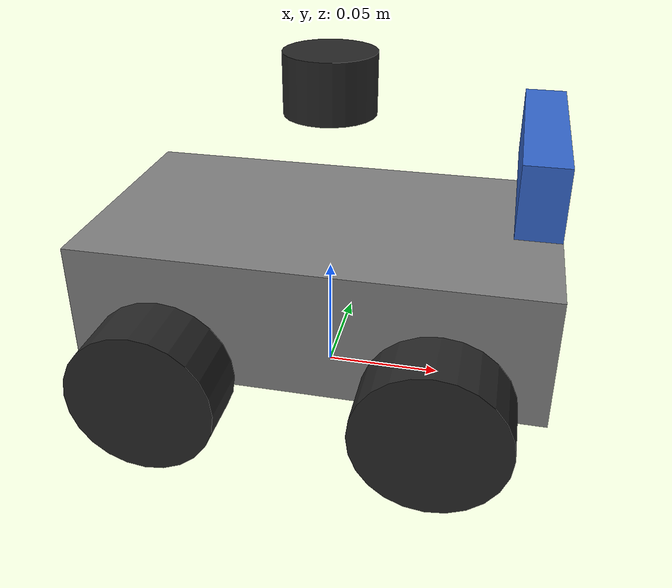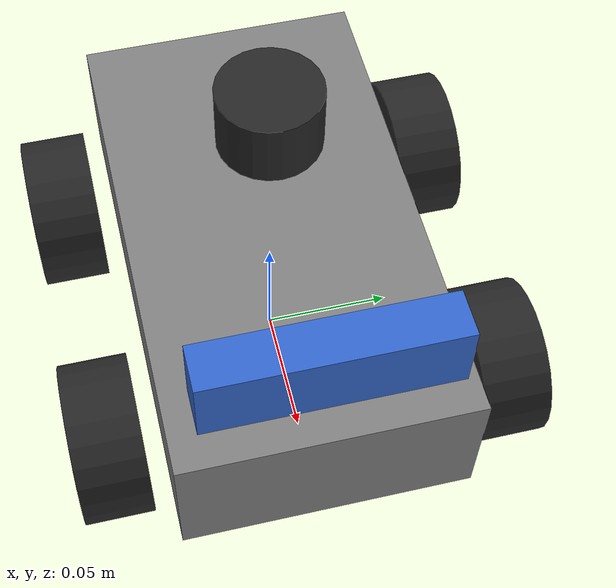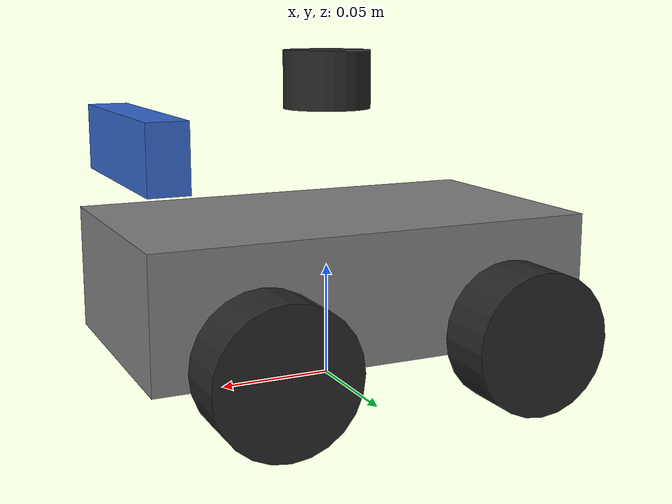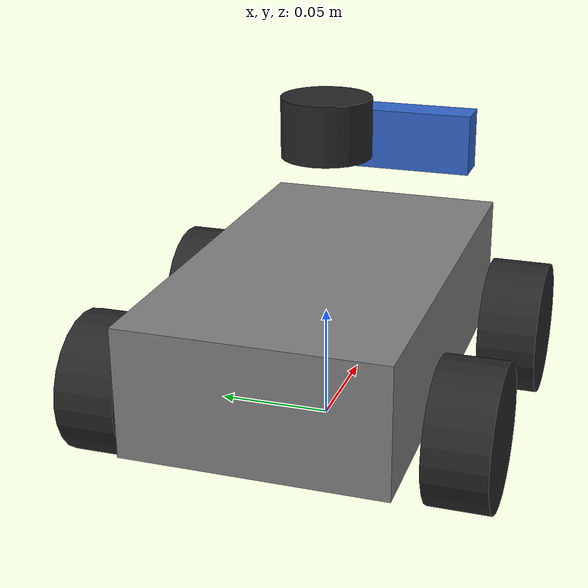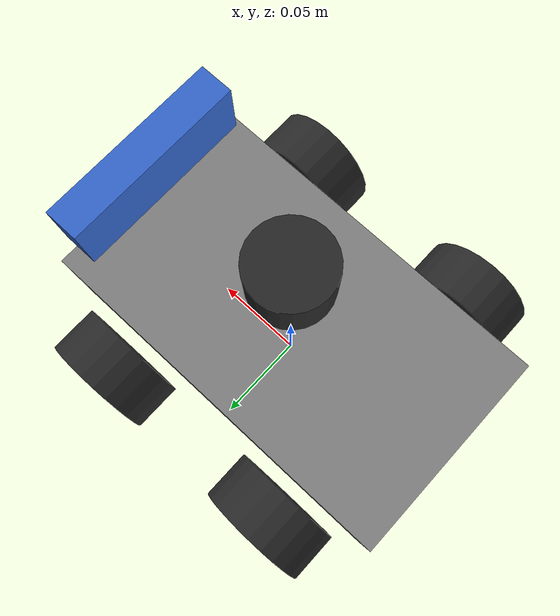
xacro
<?xml version="1.0"?>
<!--
  Wave Rover (Waveshare) 194 x 168 x 100 mm.
  Medidas marcadas [calibrar] son aproximadas: ajustar con regla sobre el robot.
  Convencion REP-103: x adelante, y izquierda, z arriba.
-->
<robot xmlns:xacro="http://www.ros.org/wiki/xacro" name="waver">

  <!-- Chasis -->
  <xacro:property name="body_length" value="0.194"/>
  <xacro:property name="body_width"  value="0.110"/>   <!-- sin ruedas [calibrar] -->
  <xacro:property name="body_height" value="0.055"/>   <!-- [calibrar] -->
  <xacro:property name="ground_clearance" value="0.020"/> <!-- [calibrar] -->

  <!-- Ruedas -->
  <xacro:property name="wheel_radius" value="0.030"/>  <!-- [calibrar] -->
  <xacro:property name="wheel_width"  value="0.026"/>  <!-- [calibrar] -->
  <xacro:property name="wheel_separation" value="0.125"/> <!-- entre centros [calibrar] -->
  <xacro:property name="wheel_base" value="0.110"/>    <!-- entre ejes [calibrar] -->

  <!-- Sensores (alturas sobre base_link) [calibrar todos] -->
  <xacro:property name="lidar_x" value="0.0"/>
  <xacro:property name="lidar_z" value="0.085"/>
  <xacro:property name="oak_x" value="0.085"/>
  <xacro:property name="oak_z" value="0.060"/>

  <material name="black"><color rgba="0.15 0.15 0.15 1"/></material>
  <material name="grey"><color rgba="0.5 0.5 0.5 1"/></material>
  <material name="blue"><color rgba="0.2 0.4 0.8 1"/></material>

  <!-- base_footprint en el suelo, base_link en el centro del chasis -->
  <link name="base_footprint"/>

  <link name="base_link">
    <visual>
      <geometry><box size="${body_length} ${body_width} ${body_height}"/></geometry>
      <material name="grey"/>
    </visual>
    <collision>
      <geometry><box size="${body_length} ${body_width} ${body_height}"/></geometry>
    </collision>
    <inertial>
      <mass value="1.2"/>
      <inertia ixx="0.002" ixy="0" ixz="0" iyy="0.004" iyz="0" izz="0.005"/>
    </inertial>
  </link>

  <joint name="base_footprint_joint" type="fixed">
    <parent link="base_footprint"/>
    <child link="base_link"/>
    <origin xyz="0 0 ${ground_clearance + body_height/2}" rpy="0 0 0"/>
  </joint>

  <!-- Ruedas (fijas: sin encoders, no publicamos su giro) -->
  <xacro:macro name="wheel" params="name x y">
    <link name="${name}_wheel">
      <visual>
        <geometry><cylinder radius="${wheel_radius}" length="${wheel_width}"/></geometry>
        <origin rpy="${pi/2} 0 0"/>
        <material name="black"/>
      </visual>
      <collision>
        <geometry><cylinder radius="${wheel_radius}" length="${wheel_width}"/></geometry>
        <origin rpy="${pi/2} 0 0"/>
      </collision>
      <inertial>
        <mass value="0.05"/>
        <inertia ixx="0.00002" ixy="0" ixz="0" iyy="0.00002" iyz="0" izz="0.00002"/>
      </inertial>
    </link>
    <joint name="${name}_wheel_joint" type="fixed">
      <parent link="base_link"/>
      <child link="${name}_wheel"/>
      <origin xyz="${x} ${y} ${-body_height/2 - ground_clearance + wheel_radius}" rpy="0 0 0"/>
    </joint>
  </xacro:macro>

  <xacro:wheel name="front_left"  x="${wheel_base/2}"  y="${(wheel_separation + wheel_width)/2}"/>
  <xacro:wheel name="front_right" x="${wheel_base/2}"  y="${-(wheel_separation + wheel_width)/2}"/>
  <xacro:wheel name="rear_left"   x="${-wheel_base/2}" y="${(wheel_separation + wheel_width)/2}"/>
  <xacro:wheel name="rear_right"  x="${-wheel_base/2}" y="${-(wheel_separation + wheel_width)/2}"/>

  <!-- IMU (en la placa driver, centro del chasis) -->
  <link name="imu_link"/>
  <joint name="imu_joint" type="fixed">
    <parent link="base_link"/>
    <child link="imu_link"/>
    <origin xyz="0 0 0" rpy="0 0 0"/>
  </joint>

  <!-- Lidar STL-06 (montado arriba, centro) -->
  <link name="laser_frame">
    <visual>
      <geometry><cylinder radius="0.019" length="0.025"/></geometry>
      <material name="black"/>
    </visual>
  </link>
  <joint name="laser_joint" type="fixed">
    <parent link="base_link"/>
    <child link="laser_frame"/>
    <origin xyz="${lidar_x} 0 ${lidar_z}" rpy="0 0 0"/>
  </joint>

  <!-- OAK-D Lite (frontal). oak_link es el cuerpo; los frames opticos los
       publica depthai_ros_driver como hijos (oak_rgb_camera_optical_frame...) -->
  <link name="oak_link">
    <visual>
      <geometry><box size="0.017 0.091 0.028"/></geometry>
      <material name="blue"/>
    </visual>
  </link>
  <joint name="oak_joint" type="fixed">
    <parent link="base_link"/>
    <child link="oak_link"/>
    <origin xyz="${oak_x} 0 ${oak_z}" rpy="0 0 0"/>
  </joint>

</robot>
